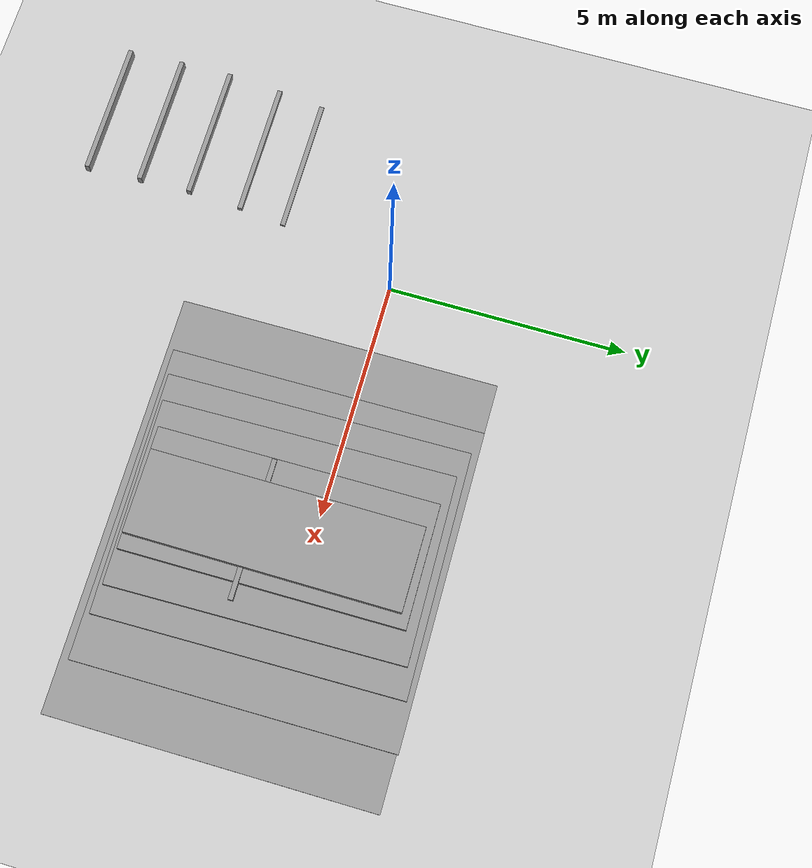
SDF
<sdf version="1.7">
 <world name="default">
  <model name="ground_plane">
   <static>1</static>
   <link name="link">
    <collision name="collision">
     <geometry><plane><normal>0 0 1</normal><size>100 100</size></plane></geometry>
     <surface><friction><ode><mu>0.7</mu><mu2>0.7</mu2></ode></friction></surface>
    </collision>
    <visual name="visual">
     <cast_shadows>0</cast_shadows>
     <geometry><plane><normal>0 0 1</normal><size>100 100</size></plane></geometry>
     <material>
      <script><uri>file://media/materials/scripts/gazebo.material</uri><name>Gazebo/Grey</name></script>
     </material>
    </visual>
   </link>
  </model>
  <light name="sun" type="directional">
   <pose>0 0 10 0 -0 0</pose>
   <diffuse>0.8 0.8 0.8 1</diffuse>
   <specular>0.1 0.1 0.1 1</specular>
   <attenuation>
    <range>1000</range>
    <constant>0.9</constant>
    <linear>0.01</linear>
    <quadratic>0.001</quadratic>
   </attenuation>
   <direction>-0.5 0.5 -1</direction>
   <spot><inner_angle>0</inner_angle><outer_angle>0</outer_angle><falloff>0</falloff></spot>
  </light>
  <gravity>0 0 -9.81</gravity>
  <magnetic_field>6e-06 2.3e-05 -4.2e-05</magnetic_field>
  <atmosphere type="adiabatic"/>
  <physics name="default_physics" default="0" type="ode">
   <max_step_size>0.001</max_step_size>
   <real_time_factor>1</real_time_factor>
   <real_time_update_rate>1000</real_time_update_rate>
  </physics>
  <scene><ambient>0.4 0.4 0.4 1</ambient><background>0.7 0.7 0.7 1</background><shadows>1</shadows></scene>
  <spherical_coordinates>
   <surface_model>EARTH_WGS84</surface_model>
   <latitude_deg>0</latitude_deg>
   <longitude_deg>0</longitude_deg>
   <elevation>0</elevation>
   <heading_deg>0</heading_deg>
  </spherical_coordinates>
  <model name="unit_box">
   <static>1</static>
   <pose>5.78133 -0.659851 0.038678 5e-06 1.5e-05 0.001025</pose>
   <link name="link">
    <inertial>
     <mass>1</mass>
     <inertia>
      <ixx>0.166667</ixx>
      <ixy>0</ixy>
      <ixz>0</ixz>
      <iyy>0.166667</iyy>
      <iyz>0</iyz>
      <izz>0.166667</izz>
     </inertia>
    </inertial>
    <collision name="collision"><geometry><box><size>8.68409 6.67615 0.0802598</size></box></geometry></collision>
    <visual name="visual">
     <geometry><box><size>8.68409 6.67615 0.0802598</size></box></geometry>
     <material>
      <script><name>Gazebo/Grey</name><uri>file://media/materials/scripts/gazebo.material</uri></script>
     </material>
    </visual>
   </link>
  </model>
  <model name="unit_box_clone_clone">
   <static>1</static>
   <pose>5.76077 -0.573205 0.117159 -1.3e-05 1e-05 0.006134</pose>
   <link name="link">
    <inertial>
     <mass>1</mass>
     <inertia>
      <ixx>0.166667</ixx>
      <ixy>0</ixy>
      <ixz>0</ixz>
      <iyy>0.166667</iyy>
      <iyz>0</iyz>
      <izz>0.166667</izz>
     </inertia>
    </inertial>
    <collision name="collision"><geometry><box><size>6.48949 6.53951 0.0795968</size></box></geometry></collision>
    <visual name="visual">
     <geometry><box><size>6.48949 6.53951 0.0795968</size></box></geometry>
     <material>
      <script><name>Gazebo/Grey</name><uri>file://media/materials/scripts/gazebo.material</uri></script>
     </material>
    </visual>
   </link>
  </model>
  <model name="unit_box_clone_clone_0">
   <static>1</static>
   <pose>5.54636 -0.5858 0.19901 -6.8e-05 1e-05 0.013495</pose>
   <link name="link">
    <inertial>
     <mass>1</mass>
     <inertia>
      <ixx>0.166667</ixx>
      <ixy>0</ixy>
      <ixz>0</ixz>
      <iyy>0.166667</iyy>
      <iyz>0</iyz>
      <izz>0.166667</izz>
     </inertia>
    </inertial>
    <collision name="collision"><geometry><box><size>5.00877 6.30633 0.125855</size></box></geometry></collision>
    <visual name="visual">
     <geometry><box><size>5.00877 6.30633 0.125855</size></box></geometry>
     <material>
      <script><name>Gazebo/Grey</name><uri>file://media/materials/scripts/gazebo.material</uri></script>
     </material>
    </visual>
   </link>
  </model>
  <model name="unit_box_clone_clone_1">
   <static>1</static>
   <pose>5.53214 -0.620945 0.264766 -6.9e-05 1e-05 0.016868</pose>
   <link name="link">
    <inertial>
     <mass>1</mass>
     <inertia>
      <ixx>0.166667</ixx>
      <ixy>0</ixy>
      <ixz>0</ixz>
      <iyy>0.166667</iyy>
      <iyz>0</iyz>
      <izz>0.166667</izz>
     </inertia>
    </inertial>
    <collision name="collision"><geometry><box><size>3.8324 6.06711 0.215681</size></box></geometry></collision>
    <visual name="visual">
     <geometry><box><size>3.8324 6.06711 0.215681</size></box></geometry>
     <material>
      <script><name>Gazebo/Grey</name><uri>file://media/materials/scripts/gazebo.material</uri></script>
     </material>
    </visual>
   </link>
  </model>
  <model name="unit_box_0">
   <static>1</static>
   <pose>5.50051 -0.666735 0.396683 1.6e-05 4.6e-05 0.004141</pose>
   <link name="link">
    <inertial>
     <mass>1</mass>
     <inertia>
      <ixx>0.166667</ixx>
      <ixy>0</ixy>
      <ixz>0</ixz>
      <iyy>0.166667</iyy>
      <iyz>0</iyz>
      <izz>0.166667</izz>
     </inertia>
    </inertial>
    <collision name="collision"><geometry><box><size>2.5387 5.78441 0.219353</size></box></geometry></collision>
    <visual name="visual">
     <geometry><box><size>2.5387 5.78441 0.219353</size></box></geometry>
     <material>
      <script><name>Gazebo/Grey</name><uri>file://media/materials/scripts/gazebo.material</uri></script>
     </material>
    </visual>
   </link>
  </model>
  <model name="unit_box_1">
   <static>1</static>
   <pose>5.61716 -0.726986 0.507139 1.6e-05 4.6e-05 -0.0027</pose>
   <link name="link">
    <inertial>
     <mass>1</mass>
     <inertia>
      <ixx>0.166667</ixx>
      <ixy>0</ixy>
      <ixz>0</ixz>
      <iyy>0.166667</iyy>
      <iyz>0</iyz>
      <izz>0.166667</izz>
     </inertia>
    </inertial>
    <collision name="collision"><geometry><box><size>1.72237 5.5961 0.326992</size></box></geometry></collision>
    <visual name="visual">
     <geometry><box><size>1.72237 5.5961 0.326992</size></box></geometry>
     <material>
      <script><name>Gazebo/Grey</name><uri>file://media/materials/scripts/gazebo.material</uri></script>
     </material>
    </visual>
   </link>
  </model>
  <model name="unit_box_2">
   <link name="link">
    <inertial>
     <mass>1</mass>
     <inertia>
      <ixx>0.166667</ixx>
      <ixy>0</ixy>
      <ixz>0</ixz>
      <iyy>0.166667</iyy>
      <iyz>0</iyz>
      <izz>0.166667</izz>
     </inertia>
    </inertial>
    <visual name="visual">
     <geometry><box><size>2.87721 0.1 0.1</size></box></geometry>
     <material>
      <script><name>Gazebo/Grey</name><uri>file://media/materials/scripts/gazebo.material</uri></script>
      <shader type="pixel"><normal_map>__default__</normal_map></shader>
      <ambient>0.3 0.3 0.3 1</ambient>
      <diffuse>0.7 0.7 0.7 1</diffuse>
      <specular>0.01 0.01 0.01 1</specular>
      <emissive>0 0 0 1</emissive>
     </material>
    </visual>
    <collision name="collision">
     <geometry><box><size>2.87721 0.1 0.1</size></box></geometry>
     <surface>
      <friction>
       <ode><mu>1</mu><mu2>1</mu2><fdir1>0 0 0</fdir1><slip1>0</slip1><slip2>0</slip2></ode>
       <torsional>
        <coefficient>1</coefficient>
        <patch_radius>0</patch_radius>
        <surface_radius>0</surface_radius>
        <use_patch_radius>1</use_patch_radius>
        <ode><slip>0</slip></ode>
       </torsional>
      </friction>
      <bounce><restitution_coefficient>0</restitution_coefficient><threshold>1e+06</threshold></bounce>
      <contact>
       <collide_without_contact>0</collide_without_contact>
       <collide_without_contact_bitmask>1</collide_without_contact_bitmask>
       <collide_bitmask>1</collide_bitmask>
       <ode>
        <soft_cfm>0</soft_cfm>
        <soft_erp>0.2</soft_erp>
        <kp>1e+13</kp>
        <kd>1</kd>
        <max_vel>0.01</max_vel>
        <min_depth>0</min_depth>
       </ode>
       <bullet>
        <split_impulse>1</split_impulse>
        <split_impulse_penetration_threshold>-0.01</split_impulse_penetration_threshold>
        <soft_cfm>0</soft_cfm>
        <soft_erp>0.2</soft_erp>
        <kp>1e+13</kp>
        <kd>1</kd>
       </bullet>
      </contact>
     </surface>
    </collision>
   </link>
   <static>0</static>
   <pose>5.69419 -1.14399 0.5 0 -0 0</pose>
  </model>
  <model name="unit_box_2_0">
   <link name="link">
    <inertial>
     <mass>1</mass>
     <inertia>
      <ixx>0.166667</ixx>
      <ixy>0</ixy>
      <ixz>0</ixz>
      <iyy>0.166667</iyy>
      <iyz>0</iyz>
      <izz>0.166667</izz>
     </inertia>
    </inertial>
    <visual name="visual">
     <geometry><box><size>2.87721 0.1 0.1</size></box></geometry>
     <material>
      <script><name>Gazebo/Grey</name><uri>file://media/materials/scripts/gazebo.material</uri></script>
      <shader type="pixel"><normal_map>__default__</normal_map></shader>
      <ambient>0.3 0.3 0.3 1</ambient>
      <diffuse>0.7 0.7 0.7 1</diffuse>
      <specular>0.01 0.01 0.01 1</specular>
      <emissive>0 0 0 1</emissive>
     </material>
    </visual>
    <collision name="collision">
     <geometry><box><size>2.87721 0.1 0.1</size></box></geometry>
     <surface>
      <friction>
       <ode><mu>1</mu><mu2>1</mu2><fdir1>0 0 0</fdir1><slip1>0</slip1><slip2>0</slip2></ode>
       <torsional>
        <coefficient>1</coefficient>
        <patch_radius>0</patch_radius>
        <surface_radius>0</surface_radius>
        <use_patch_radius>1</use_patch_radius>
        <ode><slip>0</slip></ode>
       </torsional>
      </friction>
      <bounce><restitution_coefficient>0</restitution_coefficient><threshold>1e+06</threshold></bounce>
      <contact>
       <collide_without_contact>0</collide_without_contact>
       <collide_without_contact_bitmask>1</collide_without_contact_bitmask>
       <collide_bitmask>1</collide_bitmask>
       <ode>
        <soft_cfm>0</soft_cfm>
        <soft_erp>0.2</soft_erp>
        <kp>1e+13</kp>
        <kd>1</kd>
        <max_vel>0.01</max_vel>
        <min_depth>0</min_depth>
       </ode>
       <bullet>
        <split_impulse>1</split_impulse>
        <split_impulse_penetration_threshold>-0.01</split_impulse_penetration_threshold>
        <soft_cfm>0</soft_cfm>
        <soft_erp>0.2</soft_erp>
        <kp>1e+13</kp>
        <kd>1</kd>
       </bullet>
      </contact>
     </surface>
    </collision>
   </link>
   <static>0</static>
   <pose>-2.29524 -3.52817 0.050015 0 -0 0</pose>
  </model>
  <model name="unit_box_2_0_clone">
   <link name="link">
    <inertial>
     <mass>1</mass>
     <inertia>
      <ixx>0.166667</ixx>
      <ixy>0</ixy>
      <ixz>0</ixz>
      <iyy>0.166667</iyy>
      <iyz>0</iyz>
      <izz>0.166667</izz>
     </inertia>
    </inertial>
    <visual name="visual">
     <geometry><box><size>2.87721 0.1 0.172433</size></box></geometry>
     <material>
      <script><name>Gazebo/Grey</name><uri>file://media/materials/scripts/gazebo.material</uri></script>
      <shader type="pixel"><normal_map>__default__</normal_map></shader>
      <ambient>0.3 0.3 0.3 1</ambient>
      <diffuse>0.7 0.7 0.7 1</diffuse>
      <specular>0.01 0.01 0.01 1</specular>
      <emissive>0 0 0 1</emissive>
     </material>
    </visual>
    <collision name="collision">
     <geometry><box><size>2.87721 0.1 0.172433</size></box></geometry>
     <surface>
      <friction>
       <ode><mu>1</mu><mu2>1</mu2><fdir1>0 0 0</fdir1><slip1>0</slip1><slip2>0</slip2></ode>
       <torsional>
        <coefficient>1</coefficient>
        <patch_radius>0</patch_radius>
        <surface_radius>0</surface_radius>
        <use_patch_radius>1</use_patch_radius>
        <ode><slip>0</slip></ode>
       </torsional>
      </friction>
      <bounce><restitution_coefficient>0</restitution_coefficient><threshold>1e+06</threshold></bounce>
      <contact>
       <collide_without_contact>0</collide_without_contact>
       <collide_without_contact_bitmask>1</collide_without_contact_bitmask>
       <collide_bitmask>1</collide_bitmask>
       <ode>
        <soft_cfm>0</soft_cfm>
        <soft_erp>0.2</soft_erp>
        <kp>1e+13</kp>
        <kd>1</kd>
        <max_vel>0.01</max_vel>
        <min_depth>0</min_depth>
       </ode>
       <bullet>
        <split_impulse>1</split_impulse>
        <split_impulse_penetration_threshold>-0.01</split_impulse_penetration_threshold>
        <soft_cfm>0</soft_cfm>
        <soft_erp>0.2</soft_erp>
        <kp>1e+13</kp>
        <kd>1</kd>
       </bullet>
      </contact>
     </surface>
    </collision>
   </link>
   <static>0</static>
   <pose>-2.34771 -4.6705 0.08896 0 -0 0</pose>
  </model>
  <model name="unit_box_2_0_clone_clone">
   <link name="link">
    <inertial>
     <mass>1</mass>
     <inertia>
      <ixx>0.166667</ixx>
      <ixy>0</ixy>
      <ixz>0</ixz>
      <iyy>0.166667</iyy>
      <iyz>0</iyz>
      <izz>0.166667</izz>
     </inertia>
    </inertial>
    <visual name="visual">
     <geometry><box><size>2.87721 0.1 0.226577</size></box></geometry>
     <material>
      <script><name>Gazebo/Grey</name><uri>file://media/materials/scripts/gazebo.material</uri></script>
      <shader type="pixel"><normal_map>__default__</normal_map></shader>
      <ambient>0.3 0.3 0.3 1</ambient>
      <diffuse>0.7 0.7 0.7 1</diffuse>
      <specular>0.01 0.01 0.01 1</specular>
      <emissive>0 0 0 1</emissive>
     </material>
    </visual>
    <collision name="collision">
     <geometry><box><size>2.87721 0.1 0.226577</size></box></geometry>
     <surface>
      <friction>
       <ode><mu>1</mu><mu2>1</mu2><fdir1>0 0 0</fdir1><slip1>0</slip1><slip2>0</slip2></ode>
       <torsional>
        <coefficient>1</coefficient>
        <patch_radius>0</patch_radius>
        <surface_radius>0</surface_radius>
        <use_patch_radius>1</use_patch_radius>
        <ode><slip>0</slip></ode>
       </torsional>
      </friction>
      <bounce><restitution_coefficient>0</restitution_coefficient><threshold>1e+06</threshold></bounce>
      <contact>
       <collide_without_contact>0</collide_without_contact>
       <collide_without_contact_bitmask>1</collide_without_contact_bitmask>
       <collide_bitmask>1</collide_bitmask>
       <ode>
        <soft_cfm>0</soft_cfm>
        <soft_erp>0.2</soft_erp>
        <kp>1e+13</kp>
        <kd>1</kd>
        <max_vel>0.01</max_vel>
        <min_depth>0</min_depth>
       </ode>
       <bullet>
        <split_impulse>1</split_impulse>
        <split_impulse_penetration_threshold>-0.01</split_impulse_penetration_threshold>
        <soft_cfm>0</soft_cfm>
        <soft_erp>0.2</soft_erp>
        <kp>1e+13</kp>
        <kd>1</kd>
       </bullet>
      </contact>
     </surface>
    </collision>
   </link>
   <static>0</static>
   <pose>-2.31557 -5.74579 0.113273 0 -0 0</pose>
  </model>
  <model name="unit_box_2_0_clone_clone_clone">
   <link name="link">
    <inertial>
     <mass>1</mass>
     <inertia>
      <ixx>0.166667</ixx>
      <ixy>0</ixy>
      <ixz>0</ixz>
      <iyy>0.166667</iyy>
      <iyz>0</iyz>
      <izz>0.166667</izz>
     </inertia>
    </inertial>
    <visual name="visual">
     <geometry><box><size>2.87721 0.1 0.233656</size></box></geometry>
     <material>
      <script><name>Gazebo/Grey</name><uri>file://media/materials/scripts/gazebo.material</uri></script>
      <shader type="pixel"><normal_map>__default__</normal_map></shader>
      <ambient>0.3 0.3 0.3 1</ambient>
      <diffuse>0.7 0.7 0.7 1</diffuse>
      <specular>0.01 0.01 0.01 1</specular>
      <emissive>0 0 0 1</emissive>
     </material>
    </visual>
    <collision name="collision">
     <geometry><box><size>2.87721 0.1 0.233656</size></box></geometry>
     <surface>
      <friction>
       <ode><mu>1</mu><mu2>1</mu2><fdir1>0 0 0</fdir1><slip1>0</slip1><slip2>0</slip2></ode>
       <torsional>
        <coefficient>1</coefficient>
        <patch_radius>0</patch_radius>
        <surface_radius>0</surface_radius>
        <use_patch_radius>1</use_patch_radius>
        <ode><slip>0</slip></ode>
       </torsional>
      </friction>
      <bounce><restitution_coefficient>0</restitution_coefficient><threshold>1e+06</threshold></bounce>
      <contact>
       <collide_without_contact>0</collide_without_contact>
       <collide_without_contact_bitmask>1</collide_without_contact_bitmask>
       <collide_bitmask>1</collide_bitmask>
       <ode>
        <soft_cfm>0</soft_cfm>
        <soft_erp>0.2</soft_erp>
        <kp>1e+13</kp>
        <kd>1</kd>
        <max_vel>0.01</max_vel>
        <min_depth>0</min_depth>
       </ode>
       <bullet>
        <split_impulse>1</split_impulse>
        <split_impulse_penetration_threshold>-0.01</split_impulse_penetration_threshold>
        <soft_cfm>0</soft_cfm>
        <soft_erp>0.2</soft_erp>
        <kp>1e+13</kp>
        <kd>1</kd>
       </bullet>
      </contact>
     </surface>
    </collision>
   </link>
   <static>0</static>
   <pose>-2.26934 -6.89954 0.114034 0 -0 0</pose>
  </model>
  <model name="unit_box_2_0_clone_0">
   <link name="link">
    <inertial>
     <mass>1</mass>
     <inertia>
      <ixx>0.166667</ixx>
      <ixy>0</ixy>
      <ixz>0</ixz>
      <iyy>0.166667</iyy>
      <iyz>0</iyz>
      <izz>0.166667</izz>
     </inertia>
    </inertial>
    <visual name="visual">
     <geometry><box><size>2.87721 0.1 0.0551662</size></box></geometry>
     <material>
      <script><name>Gazebo/Grey</name><uri>file://media/materials/scripts/gazebo.material</uri></script>
      <shader type="pixel"><normal_map>__default__</normal_map></shader>
      <ambient>0.3 0.3 0.3 1</ambient>
      <diffuse>0.7 0.7 0.7 1</diffuse>
      <specular>0.01 0.01 0.01 1</specular>
      <emissive>0 0 0 1</emissive>
     </material>
    </visual>
    <collision name="collision">
     <geometry><box><size>2.87721 0.1 0.0551662</size></box></geometry>
     <surface>
      <friction>
       <ode><mu>1</mu><mu2>1</mu2><fdir1>0 0 0</fdir1><slip1>0</slip1><slip2>0</slip2></ode>
       <torsional>
        <coefficient>1</coefficient>
        <patch_radius>0</patch_radius>
        <surface_radius>0</surface_radius>
        <use_patch_radius>1</use_patch_radius>
        <ode><slip>0</slip></ode>
       </torsional>
      </friction>
      <bounce><restitution_coefficient>0</restitution_coefficient><threshold>1e+06</threshold></bounce>
      <contact>
       <collide_without_contact>0</collide_without_contact>
       <collide_without_contact_bitmask>1</collide_without_contact_bitmask>
       <collide_bitmask>1</collide_bitmask>
       <ode>
        <soft_cfm>0</soft_cfm>
        <soft_erp>0.2</soft_erp>
        <kp>1e+13</kp>
        <kd>1</kd>
        <max_vel>0.01</max_vel>
        <min_depth>0</min_depth>
       </ode>
       <bullet>
        <split_impulse>1</split_impulse>
        <split_impulse_penetration_threshold>-0.01</split_impulse_penetration_threshold>
        <soft_cfm>0</soft_cfm>
        <soft_erp>0.2</soft_erp>
        <kp>1e+13</kp>
        <kd>1</kd>
       </bullet>
      </contact>
     </surface>
    </collision>
   </link>
   <static>0</static>
   <pose>-2.19183 -2.55549 0.031878 0 -0 0</pose>
  </model>
 </world>
</sdf>
